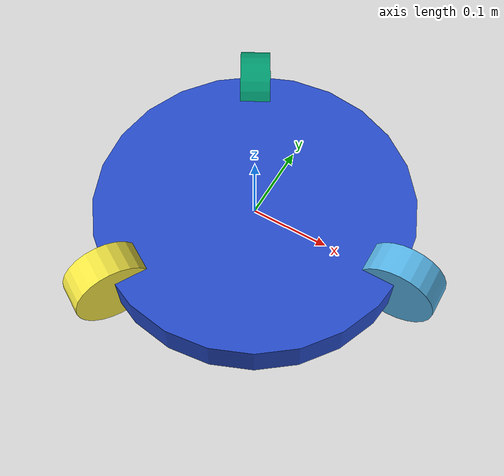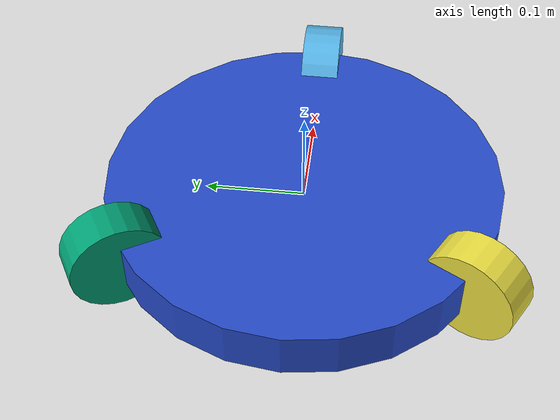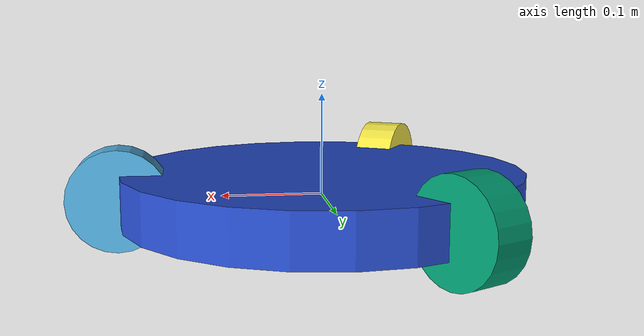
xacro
<?xml version="1.0"?>
<robot name="trashy_bot" xmlns:xacro="http://www.ros.org/wiki/xacro">

    <link name="base_link">
        <visual>
            <geometry>
                <cylinder radius="0.2" length="0.05"/>
            </geometry>
            <material name="blue"/>
        </visual>
    </link>

    <!-- Wheel Macro for easy placement -->
    <xacro:macro name="omni_wheel" params="prefix angle x y">
        <link name="${prefix}_link">
            <visual>
                <origin xyz="0 0 0" rpy="${pi/2} 0 0"/>
                <geometry>
                    <cylinder radius="0.05" length="0.04"/>
                </geometry>
            </visual>
        </link>

        <joint name="${prefix}_joint" type="continuous">
            <parent link="base_link"/>
            <child link="${prefix}_link"/>
            <origin xyz="${x} ${y} 0" rpy="0 0 ${angle}"/>
            <axis xyz="0 1 0"/>
        </joint>
    </xacro:macro>

    <!-- Placing 3 Wheels at 120 degree intervals -->
    <!-- Wheel 1: Front (0 degrees) -->
    <xacro:omni_wheel prefix="wheel_1" angle="0" x="0.2" y="0"/>

    <!-- Wheel 2: Back Left (120 degrees / 2.094 rad) -->
    <xacro:omni_wheel prefix="wheel_2" angle="2.094395" x="-0.1" y="0.1732"/>

    <!-- Wheel 3: Back Right (240 degrees / 4.188 rad) -->
    <xacro:omni_wheel prefix="wheel_3" angle="4.188790" x="-0.1" y="-0.1732"/>
</robot>
